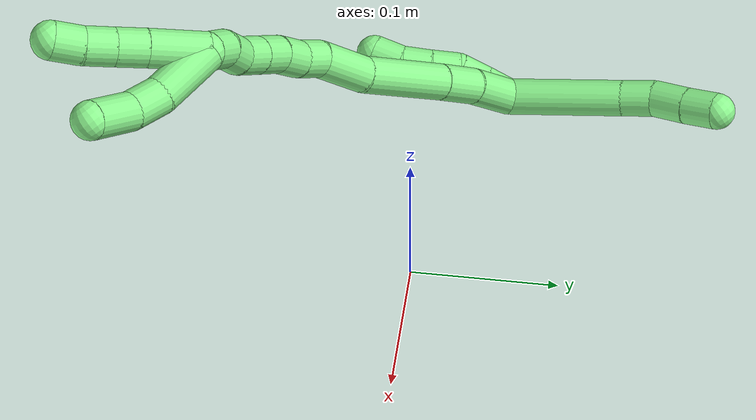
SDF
<sdf version="1.7">
 <world name="default">
  <model name="13">
   <static>0</static>
   <link name="13">
    <collision name="collision-cylinder-e_1_2_8">
     <pose>0.00856 0.03275 -0.020992 -2.1408 0.216601 -0.392548</pose>
     <geometry><cylinder><radius>0.0125</radius><length>0.079661</length></cylinder></geometry>
     <surface>
      <friction><ode><mu>1.16</mu><mu2>1.16</mu2><slip1>0</slip1><slip2>0</slip2></ode></friction>
      <contact><ode><kp>1e+06</kp><kd>1</kd><max_vel>0</max_vel><min_depth>0.001</min_depth></ode></contact>
     </surface>
    </collision>
    <visual name="visual-cylinder-e_1_2_8">
     <pose>0.00856 0.03275 -0.020992 -2.1408 0.216601 -0.392548</pose>
     <geometry><cylinder><radius>0.0125</radius><length>0.079661</length></cylinder></geometry>
     <material><ambient>0.564706 0.984314 0.572549 1</ambient></material>
    </visual>
    <collision name="collision-cylinder-e_2_8_9">
     <pose>0.02038 0.074797 -0.047663 -2.1192 0.290719 -0.510571</pose>
     <geometry><cylinder><radius>0.0125</radius><length>0.022745</length></cylinder></geometry>
     <surface>
      <friction><ode><mu>1.16</mu><mu2>1.16</mu2><slip1>0</slip1><slip2>0</slip2></ode></friction>
      <contact><ode><kp>1e+06</kp><kd>1</kd><max_vel>0</max_vel><min_depth>0.001</min_depth></ode></contact>
     </surface>
    </collision>
    <visual name="visual-cylinder-e_2_8_9">
     <pose>0.02038 0.074797 -0.047663 -2.1192 0.290719 -0.510571</pose>
     <geometry><cylinder><radius>0.0125</radius><length>0.022745</length></cylinder></geometry>
     <material><ambient>0.564706 0.984314 0.572549 1</ambient></material>
    </visual>
    <collision name="collision-cylinder-e_3_9_10">
     <pose>0.030558 0.092031 -0.060196 -2.28301 0.583258 -1.16084</pose>
     <geometry><cylinder><radius>0.0125</radius><length>0.025124</length></cylinder></geometry>
     <surface>
      <friction><ode><mu>1.16</mu><mu2>1.16</mu2><slip1>0</slip1><slip2>0</slip2></ode></friction>
      <contact><ode><kp>1e+06</kp><kd>1</kd><max_vel>0</max_vel><min_depth>0.001</min_depth></ode></contact>
     </surface>
    </collision>
    <visual name="visual-cylinder-e_3_9_10">
     <pose>0.030558 0.092031 -0.060196 -2.28301 0.583258 -1.16084</pose>
     <geometry><cylinder><radius>0.0125</radius><length>0.025124</length></cylinder></geometry>
     <material><ambient>0.564706 0.984314 0.572549 1</ambient></material>
    </visual>
    <collision name="collision-cylinder-e_4_10_6">
     <pose>0.043481 0.107449 -0.072897 -2.23442 0.563787 -1.07211</pose>
     <geometry><cylinder><radius>0.0125</radius><length>0.022469</length></cylinder></geometry>
     <surface>
      <friction><ode><mu>1.16</mu><mu2>1.16</mu2><slip1>0</slip1><slip2>0</slip2></ode></friction>
      <contact><ode><kp>1e+06</kp><kd>1</kd><max_vel>0</max_vel><min_depth>0.001</min_depth></ode></contact>
     </surface>
    </collision>
    <visual name="visual-cylinder-e_4_10_6">
     <pose>0.043481 0.107449 -0.072897 -2.23442 0.563787 -1.07211</pose>
     <geometry><cylinder><radius>0.0125</radius><length>0.022469</length></cylinder></geometry>
     <material><ambient>0.564706 0.984314 0.572549 1</ambient></material>
    </visual>
    <collision name="collision-cylinder-e_1_2_11">
     <pose>-0.00113 -0.004737 0.008734 0.497013 -0.113263 -0.02877</pose>
     <geometry><cylinder><radius>0.0125</radius><length>0.02</length></cylinder></geometry>
     <surface>
      <friction><ode><mu>1.16</mu><mu2>1.16</mu2><slip1>0</slip1><slip2>0</slip2></ode></friction>
      <contact><ode><kp>1e+06</kp><kd>1</kd><max_vel>0</max_vel><min_depth>0.001</min_depth></ode></contact>
     </surface>
    </collision>
    <visual name="visual-cylinder-e_1_2_11">
     <pose>-0.00113 -0.004737 0.008734 0.497013 -0.113263 -0.02877</pose>
     <geometry><cylinder><radius>0.0125</radius><length>0.02</length></cylinder></geometry>
     <material><ambient>0.564706 0.984314 0.572549 1</ambient></material>
    </visual>
    <collision name="collision-cylinder-e_2_11_12">
     <pose>-0.001489 -0.014203 0.026246 0.494047 0.077237 0.019486</pose>
     <geometry><cylinder><radius>0.0125</radius><length>0.02</length></cylinder></geometry>
     <surface>
      <friction><ode><mu>1.16</mu><mu2>1.16</mu2><slip1>0</slip1><slip2>0</slip2></ode></friction>
      <contact><ode><kp>1e+06</kp><kd>1</kd><max_vel>0</max_vel><min_depth>0.001</min_depth></ode></contact>
     </surface>
    </collision>
    <visual name="visual-cylinder-e_2_11_12">
     <pose>-0.001489 -0.014203 0.026246 0.494047 0.077237 0.019486</pose>
     <geometry><cylinder><radius>0.0125</radius><length>0.02</length></cylinder></geometry>
     <material><ambient>0.564706 0.984314 0.572549 1</ambient></material>
    </visual>
    <collision name="collision-cylinder-e_3_12_13">
     <pose>0.00039 -0.026342 0.041645 0.841609 0.110999 0.049717</pose>
     <geometry><cylinder><radius>0.0125</radius><length>0.02</length></cylinder></geometry>
     <surface>
      <friction><ode><mu>1.16</mu><mu2>1.16</mu2><slip1>0</slip1><slip2>0</slip2></ode></friction>
      <contact><ode><kp>1e+06</kp><kd>1</kd><max_vel>0</max_vel><min_depth>0.001</min_depth></ode></contact>
     </surface>
    </collision>
    <visual name="visual-cylinder-e_3_12_13">
     <pose>0.00039 -0.026342 0.041645 0.841609 0.110999 0.049717</pose>
     <geometry><cylinder><radius>0.0125</radius><length>0.02</length></cylinder></geometry>
     <material><ambient>0.564706 0.984314 0.572549 1</ambient></material>
    </visual>
    <collision name="collision-cylinder-e_4_13_14">
     <pose>0.001628 -0.041131 0.055016 0.82991 0.012989 0.005722</pose>
     <geometry><cylinder><radius>0.0125</radius><length>0.02</length></cylinder></geometry>
     <surface>
      <friction><ode><mu>1.16</mu><mu2>1.16</mu2><slip1>0</slip1><slip2>0</slip2></ode></friction>
      <contact><ode><kp>1e+06</kp><kd>1</kd><max_vel>0</max_vel><min_depth>0.001</min_depth></ode></contact>
     </surface>
    </collision>
    <visual name="visual-cylinder-e_4_13_14">
     <pose>0.001628 -0.041131 0.055016 0.82991 0.012989 0.005722</pose>
     <geometry><cylinder><radius>0.0125</radius><length>0.02</length></cylinder></geometry>
     <material><ambient>0.564706 0.984314 0.572549 1</ambient></material>
    </visual>
    <collision name="collision-cylinder-e_5_14_5">
     <pose>-0.000637 -0.05424 0.069602 0.631385 -0.241854 -0.079339</pose>
     <geometry><cylinder><radius>0.0125</radius><length>0.02</length></cylinder></geometry>
     <surface>
      <friction><ode><mu>1.16</mu><mu2>1.16</mu2><slip1>0</slip1><slip2>0</slip2></ode></friction>
      <contact><ode><kp>1e+06</kp><kd>1</kd><max_vel>0</max_vel><min_depth>0.001</min_depth></ode></contact>
     </surface>
    </collision>
    <visual name="visual-cylinder-e_5_14_5">
     <pose>-0.000637 -0.05424 0.069602 0.631385 -0.241854 -0.079339</pose>
     <geometry><cylinder><radius>0.0125</radius><length>0.02</length></cylinder></geometry>
     <material><ambient>0.564706 0.984314 0.572549 1</ambient></material>
    </visual>
    <collision name="collision-cylinder-e_1_2_15">
     <pose>0.013191 -0.00744 0.012807 0.526279 0.727602 0.204422</pose>
     <geometry><cylinder><radius>0.0125</radius><length>0.039666</length></cylinder></geometry>
     <surface>
      <friction><ode><mu>1.16</mu><mu2>1.16</mu2><slip1>0</slip1><slip2>0</slip2></ode></friction>
      <contact><ode><kp>1e+06</kp><kd>1</kd><max_vel>0</max_vel><min_depth>0.001</min_depth></ode></contact>
     </surface>
    </collision>
    <visual name="visual-cylinder-e_1_2_15">
     <pose>0.013191 -0.00744 0.012807 0.526279 0.727602 0.204422</pose>
     <geometry><cylinder><radius>0.0125</radius><length>0.039666</length></cylinder></geometry>
     <material><ambient>0.564706 0.984314 0.572549 1</ambient></material>
    </visual>
    <collision name="collision-cylinder-e_2_15_16">
     <pose>0.035934 -0.022486 0.034859 0.68843 0.673478 0.249687</pose>
     <geometry><cylinder><radius>0.0125</radius><length>0.030632</length></cylinder></geometry>
     <surface>
      <friction><ode><mu>1.16</mu><mu2>1.16</mu2><slip1>0</slip1><slip2>0</slip2></ode></friction>
      <contact><ode><kp>1e+06</kp><kd>1</kd><max_vel>0</max_vel><min_depth>0.001</min_depth></ode></contact>
     </surface>
    </collision>
    <visual name="visual-cylinder-e_2_15_16">
     <pose>0.035934 -0.022486 0.034859 0.68843 0.673478 0.249687</pose>
     <geometry><cylinder><radius>0.0125</radius><length>0.030632</length></cylinder></geometry>
     <material><ambient>0.564706 0.984314 0.572549 1</ambient></material>
    </visual>
    <collision name="collision-cylinder-e_3_16_17">
     <pose>0.065489 -0.048162 0.064297 0.729961 0.635868 0.250183</pose>
     <geometry><cylinder><radius>0.0125</radius><length>0.067361</length></cylinder></geometry>
     <surface>
      <friction><ode><mu>1.16</mu><mu2>1.16</mu2><slip1>0</slip1><slip2>0</slip2></ode></friction>
      <contact><ode><kp>1e+06</kp><kd>1</kd><max_vel>0</max_vel><min_depth>0.001</min_depth></ode></contact>
     </surface>
    </collision>
    <visual name="visual-cylinder-e_3_16_17">
     <pose>0.065489 -0.048162 0.064297 0.729961 0.635868 0.250183</pose>
     <geometry><cylinder><radius>0.0125</radius><length>0.067361</length></cylinder></geometry>
     <material><ambient>0.564706 0.984314 0.572549 1</ambient></material>
    </visual>
    <collision name="collision-cylinder-e_4_17_18">
     <pose>0.096028 -0.074129 0.098711 0.506956 0.574813 0.152847</pose>
     <geometry><cylinder><radius>0.0125</radius><length>0.03876</length></cylinder></geometry>
     <surface>
      <friction><ode><mu>1.16</mu><mu2>1.16</mu2><slip1>0</slip1><slip2>0</slip2></ode></friction>
      <contact><ode><kp>1e+06</kp><kd>1</kd><max_vel>0</max_vel><min_depth>0.001</min_depth></ode></contact>
     </surface>
    </collision>
    <visual name="visual-cylinder-e_4_17_18">
     <pose>0.096028 -0.074129 0.098711 0.506956 0.574813 0.152847</pose>
     <geometry><cylinder><radius>0.0125</radius><length>0.03876</length></cylinder></geometry>
     <material><ambient>0.564706 0.984314 0.572549 1</ambient></material>
    </visual>
    <collision name="collision-cylinder-e_5_18_19">
     <pose>0.113694 -0.08704 0.117913 0.788576 0.78972 0.343383</pose>
     <geometry><cylinder><radius>0.0125</radius><length>0.020079</length></cylinder></geometry>
     <surface>
      <friction><ode><mu>1.16</mu><mu2>1.16</mu2><slip1>0</slip1><slip2>0</slip2></ode></friction>
      <contact><ode><kp>1e+06</kp><kd>1</kd><max_vel>0</max_vel><min_depth>0.001</min_depth></ode></contact>
     </surface>
    </collision>
    <visual name="visual-cylinder-e_5_18_19">
     <pose>0.113694 -0.08704 0.117913 0.788576 0.78972 0.343383</pose>
     <geometry><cylinder><radius>0.0125</radius><length>0.020079</length></cylinder></geometry>
     <material><ambient>0.564706 0.984314 0.572549 1</ambient></material>
    </visual>
    <collision name="collision-cylinder-e_6_19_20">
     <pose>0.128788 -0.095741 0.129158 0.532003 0.831118 0.239299</pose>
     <geometry><cylinder><radius>0.0125</radius><length>0.021566</length></cylinder></geometry>
     <surface>
      <friction><ode><mu>1.16</mu><mu2>1.16</mu2><slip1>0</slip1><slip2>0</slip2></ode></friction>
      <contact><ode><kp>1e+06</kp><kd>1</kd><max_vel>0</max_vel><min_depth>0.001</min_depth></ode></contact>
     </surface>
    </collision>
    <visual name="visual-cylinder-e_6_19_20">
     <pose>0.128788 -0.095741 0.129158 0.532003 0.831118 0.239299</pose>
     <geometry><cylinder><radius>0.0125</radius><length>0.021566</length></cylinder></geometry>
     <material><ambient>0.564706 0.984314 0.572549 1</ambient></material>
    </visual>
    <collision name="collision-cylinder-e_7_20_21">
     <pose>0.145501 -0.103914 0.140115 0.762905 0.932352 0.398287</pose>
     <geometry><cylinder><radius>0.0125</radius><length>0.021787</length></cylinder></geometry>
     <surface>
      <friction><ode><mu>1.16</mu><mu2>1.16</mu2><slip1>0</slip1><slip2>0</slip2></ode></friction>
      <contact><ode><kp>1e+06</kp><kd>1</kd><max_vel>0</max_vel><min_depth>0.001</min_depth></ode></contact>
     </surface>
    </collision>
    <visual name="visual-cylinder-e_7_20_21">
     <pose>0.145501 -0.103914 0.140115 0.762905 0.932352 0.398287</pose>
     <geometry><cylinder><radius>0.0125</radius><length>0.021787</length></cylinder></geometry>
     <material><ambient>0.564706 0.984314 0.572549 1</ambient></material>
    </visual>
    <collision name="collision-cylinder-e_8_21_22">
     <pose>0.162271 -0.112552 0.149208 0.756322 0.924543 0.390863</pose>
     <geometry><cylinder><radius>0.0125</radius><length>0.020096</length></cylinder></geometry>
     <surface>
      <friction><ode><mu>1.16</mu><mu2>1.16</mu2><slip1>0</slip1><slip2>0</slip2></ode></friction>
      <contact><ode><kp>1e+06</kp><kd>1</kd><max_vel>0</max_vel><min_depth>0.001</min_depth></ode></contact>
     </surface>
    </collision>
    <visual name="visual-cylinder-e_8_21_22">
     <pose>0.162271 -0.112552 0.149208 0.756322 0.924543 0.390863</pose>
     <geometry><cylinder><radius>0.0125</radius><length>0.020096</length></cylinder></geometry>
     <material><ambient>0.564706 0.984314 0.572549 1</ambient></material>
    </visual>
    <collision name="collision-cylinder-e_9_22_23">
     <pose>0.178585 -0.117931 0.15909 0.220129 0.975478 0.117116</pose>
     <geometry><cylinder><radius>0.0125</radius><length>0.02003</length></cylinder></geometry>
     <surface>
      <friction><ode><mu>1.16</mu><mu2>1.16</mu2><slip1>0</slip1><slip2>0</slip2></ode></friction>
      <contact><ode><kp>1e+06</kp><kd>1</kd><max_vel>0</max_vel><min_depth>0.001</min_depth></ode></contact>
     </surface>
    </collision>
    <visual name="visual-cylinder-e_9_22_23">
     <pose>0.178585 -0.117931 0.15909 0.220129 0.975478 0.117116</pose>
     <geometry><cylinder><radius>0.0125</radius><length>0.02003</length></cylinder></geometry>
     <material><ambient>0.564706 0.984314 0.572549 1</ambient></material>
    </visual>
    <collision name="collision-cylinder-e_10_23_1">
     <pose>0.195733 -0.122489 0.167842 0.794599 1.08556 0.49582</pose>
     <geometry><cylinder><radius>0.0125</radius><length>0.020022</length></cylinder></geometry>
     <surface>
      <friction><ode><mu>1.16</mu><mu2>1.16</mu2><slip1>0</slip1><slip2>0</slip2></ode></friction>
      <contact><ode><kp>1e+06</kp><kd>1</kd><max_vel>0</max_vel><min_depth>0.001</min_depth></ode></contact>
     </surface>
    </collision>
    <visual name="visual-cylinder-e_10_23_1">
     <pose>0.195733 -0.122489 0.167842 0.794599 1.08556 0.49582</pose>
     <geometry><cylinder><radius>0.0125</radius><length>0.020022</length></cylinder></geometry>
     <material><ambient>0.564706 0.984314 0.572549 1</ambient></material>
    </visual>
    <collision name="collision-cylinder-e_1_1_24">
     <pose>0.215591 -0.144168 0.169535 1.65662 0.538578 0.584306</pose>
     <geometry><cylinder><radius>0.0125</radius><length>0.042903</length></cylinder></geometry>
     <surface>
      <friction><ode><mu>1.16</mu><mu2>1.16</mu2><slip1>0</slip1><slip2>0</slip2></ode></friction>
      <contact><ode><kp>1e+06</kp><kd>1</kd><max_vel>0</max_vel><min_depth>0.001</min_depth></ode></contact>
     </surface>
    </collision>
    <visual name="visual-cylinder-e_1_1_24">
     <pose>0.215591 -0.144168 0.169535 1.65662 0.538578 0.584306</pose>
     <geometry><cylinder><radius>0.0125</radius><length>0.042903</length></cylinder></geometry>
     <material><ambient>0.564706 0.984314 0.572549 1</ambient></material>
    </visual>
    <collision name="collision-cylinder-e_2_24_25">
     <pose>0.233727 -0.171777 0.169942 1.35958 0.645471 0.528025</pose>
     <geometry><cylinder><radius>0.0125</radius><length>0.023716</length></cylinder></geometry>
     <surface>
      <friction><ode><mu>1.16</mu><mu2>1.16</mu2><slip1>0</slip1><slip2>0</slip2></ode></friction>
      <contact><ode><kp>1e+06</kp><kd>1</kd><max_vel>0</max_vel><min_depth>0.001</min_depth></ode></contact>
     </surface>
    </collision>
    <visual name="visual-cylinder-e_2_24_25">
     <pose>0.233727 -0.171777 0.169942 1.35958 0.645471 0.528025</pose>
     <geometry><cylinder><radius>0.0125</radius><length>0.023716</length></cylinder></geometry>
     <material><ambient>0.564706 0.984314 0.572549 1</ambient></material>
    </visual>
    <collision name="collision-cylinder-e_3_25_4">
     <pose>0.253341 -0.190258 0.178078 0.982516 0.844663 0.471877</pose>
     <geometry><cylinder><radius>0.0125</radius><length>0.033381</length></cylinder></geometry>
     <surface>
      <friction><ode><mu>1.16</mu><mu2>1.16</mu2><slip1>0</slip1><slip2>0</slip2></ode></friction>
      <contact><ode><kp>1e+06</kp><kd>1</kd><max_vel>0</max_vel><min_depth>0.001</min_depth></ode></contact>
     </surface>
    </collision>
    <visual name="visual-cylinder-e_3_25_4">
     <pose>0.253341 -0.190258 0.178078 0.982516 0.844663 0.471877</pose>
     <geometry><cylinder><radius>0.0125</radius><length>0.033381</length></cylinder></geometry>
     <material><ambient>0.564706 0.984314 0.572549 1</ambient></material>
    </visual>
    <collision name="collision-cylinder-e_1_1_26">
     <pose>0.210748 -0.13994 0.183419 0.853931 0.317775 0.145544</pose>
     <geometry><cylinder><radius>0.0125</radius><length>0.039432</length></cylinder></geometry>
     <surface>
      <friction><ode><mu>1.16</mu><mu2>1.16</mu2><slip1>0</slip1><slip2>0</slip2></ode></friction>
      <contact><ode><kp>1e+06</kp><kd>1</kd><max_vel>0</max_vel><min_depth>0.001</min_depth></ode></contact>
     </surface>
    </collision>
    <visual name="visual-cylinder-e_1_1_26">
     <pose>0.210748 -0.13994 0.183419 0.853931 0.317775 0.145544</pose>
     <geometry><cylinder><radius>0.0125</radius><length>0.039432</length></cylinder></geometry>
     <material><ambient>0.564706 0.984314 0.572549 1</ambient></material>
    </visual>
    <collision name="collision-cylinder-e_2_26_27">
     <pose>0.220123 -0.161522 0.201948 0.875639 0.319447 0.150539</pose>
     <geometry><cylinder><radius>0.0125</radius><length>0.020469</length></cylinder></geometry>
     <surface>
      <friction><ode><mu>1.16</mu><mu2>1.16</mu2><slip1>0</slip1><slip2>0</slip2></ode></friction>
      <contact><ode><kp>1e+06</kp><kd>1</kd><max_vel>0</max_vel><min_depth>0.001</min_depth></ode></contact>
     </surface>
    </collision>
    <visual name="visual-cylinder-e_2_26_27">
     <pose>0.220123 -0.161522 0.201948 0.875639 0.319447 0.150539</pose>
     <geometry><cylinder><radius>0.0125</radius><length>0.020469</length></cylinder></geometry>
     <material><ambient>0.564706 0.984314 0.572549 1</ambient></material>
    </visual>
    <collision name="collision-cylinder-e_3_27_28">
     <pose>0.226594 -0.176199 0.214301 0.866542 0.331397 0.154411</pose>
     <geometry><cylinder><radius>0.0125</radius><length>0.020025</length></cylinder></geometry>
     <surface>
      <friction><ode><mu>1.16</mu><mu2>1.16</mu2><slip1>0</slip1><slip2>0</slip2></ode></friction>
      <contact><ode><kp>1e+06</kp><kd>1</kd><max_vel>0</max_vel><min_depth>0.001</min_depth></ode></contact>
     </surface>
    </collision>
    <visual name="visual-cylinder-e_3_27_28">
     <pose>0.226594 -0.176199 0.214301 0.866542 0.331397 0.154411</pose>
     <geometry><cylinder><radius>0.0125</radius><length>0.020025</length></cylinder></geometry>
     <material><ambient>0.564706 0.984314 0.572549 1</ambient></material>
    </visual>
    <collision name="collision-cylinder-e_4_28_3">
     <pose>0.232796 -0.189862 0.227537 0.736947 0.297658 0.115655</pose>
     <geometry><cylinder><radius>0.0125</radius><length>0.020075</length></cylinder></geometry>
     <surface>
      <friction><ode><mu>1.16</mu><mu2>1.16</mu2><slip1>0</slip1><slip2>0</slip2></ode></friction>
      <contact><ode><kp>1e+06</kp><kd>1</kd><max_vel>0</max_vel><min_depth>0.001</min_depth></ode></contact>
     </surface>
    </collision>
    <visual name="visual-cylinder-e_4_28_3">
     <pose>0.232796 -0.189862 0.227537 0.736947 0.297658 0.115655</pose>
     <geometry><cylinder><radius>0.0125</radius><length>0.020075</length></cylinder></geometry>
     <material><ambient>0.564706 0.984314 0.572549 1</ambient></material>
    </visual>
    <collision name="collision-sphere-3">
     <pose>0.235739 -0.196311 0.234643 0 -0 0</pose>
     <geometry><sphere><radius>0.0125</radius></sphere></geometry>
     <surface>
      <friction><ode><mu>1.16</mu><mu2>1.16</mu2><slip1>0</slip1><slip2>0</slip2></ode></friction>
      <contact><ode><kp>1e+06</kp><kd>1</kd><max_vel>0</max_vel><min_depth>0.001</min_depth></ode></contact>
     </surface>
    </collision>
    <visual name="visual-sphere-3">
     <pose>0.235739 -0.196311 0.234643 0 -0 0</pose>
     <geometry><sphere><radius>0.0125</radius></sphere></geometry>
     <material><ambient>0.564706 0.984314 0.572549 1</ambient></material>
    </visual>
    <collision name="collision-sphere-28">
     <pose>0.229852 -0.183414 0.220431 0 -0 0</pose>
     <geometry><sphere><radius>0.0125</radius></sphere></geometry>
     <surface>
      <friction><ode><mu>1.16</mu><mu2>1.16</mu2><slip1>0</slip1><slip2>0</slip2></ode></friction>
      <contact><ode><kp>1e+06</kp><kd>1</kd><max_vel>0</max_vel><min_depth>0.001</min_depth></ode></contact>
     </surface>
    </collision>
    <visual name="visual-sphere-28">
     <pose>0.229852 -0.183414 0.220431 0 -0 0</pose>
     <geometry><sphere><radius>0.0125</radius></sphere></geometry>
     <material><ambient>0.564706 0.984314 0.572549 1</ambient></material>
    </visual>
    <collision name="collision-sphere-27">
     <pose>0.223337 -0.168984 0.208171 0 -0 0</pose>
     <geometry><sphere><radius>0.0125</radius></sphere></geometry>
     <surface>
      <friction><ode><mu>1.16</mu><mu2>1.16</mu2><slip1>0</slip1><slip2>0</slip2></ode></friction>
      <contact><ode><kp>1e+06</kp><kd>1</kd><max_vel>0</max_vel><min_depth>0.001</min_depth></ode></contact>
     </surface>
    </collision>
    <visual name="visual-sphere-27">
     <pose>0.223337 -0.168984 0.208171 0 -0 0</pose>
     <geometry><sphere><radius>0.0125</radius></sphere></geometry>
     <material><ambient>0.564706 0.984314 0.572549 1</ambient></material>
    </visual>
    <collision name="collision-sphere-26">
     <pose>0.216909 -0.15406 0.195724 0 -0 0</pose>
     <geometry><sphere><radius>0.0125</radius></sphere></geometry>
     <surface>
      <friction><ode><mu>1.16</mu><mu2>1.16</mu2><slip1>0</slip1><slip2>0</slip2></ode></friction>
      <contact><ode><kp>1e+06</kp><kd>1</kd><max_vel>0</max_vel><min_depth>0.001</min_depth></ode></contact>
     </surface>
    </collision>
    <visual name="visual-sphere-26">
     <pose>0.216909 -0.15406 0.195724 0 -0 0</pose>
     <geometry><sphere><radius>0.0125</radius></sphere></geometry>
     <material><ambient>0.564706 0.984314 0.572549 1</ambient></material>
    </visual>
    <collision name="collision-sphere-4">
     <pose>0.265821 -0.199478 0.184228 0 -0 0</pose>
     <geometry><sphere><radius>0.0125</radius></sphere></geometry>
     <surface>
      <friction><ode><mu>1.16</mu><mu2>1.16</mu2><slip1>0</slip1><slip2>0</slip2></ode></friction>
      <contact><ode><kp>1e+06</kp><kd>1</kd><max_vel>0</max_vel><min_depth>0.001</min_depth></ode></contact>
     </surface>
    </collision>
    <visual name="visual-sphere-4">
     <pose>0.265821 -0.199478 0.184228 0 -0 0</pose>
     <geometry><sphere><radius>0.0125</radius></sphere></geometry>
     <material><ambient>0.564706 0.984314 0.572549 1</ambient></material>
    </visual>
    <collision name="collision-sphere-25">
     <pose>0.24086 -0.181039 0.171928 0 -0 0</pose>
     <geometry><sphere><radius>0.0125</radius></sphere></geometry>
     <surface>
      <friction><ode><mu>1.16</mu><mu2>1.16</mu2><slip1>0</slip1><slip2>0</slip2></ode></friction>
      <contact><ode><kp>1e+06</kp><kd>1</kd><max_vel>0</max_vel><min_depth>0.001</min_depth></ode></contact>
     </surface>
    </collision>
    <visual name="visual-sphere-25">
     <pose>0.24086 -0.181039 0.171928 0 -0 0</pose>
     <geometry><sphere><radius>0.0125</radius></sphere></geometry>
     <material><ambient>0.564706 0.984314 0.572549 1</ambient></material>
    </visual>
    <collision name="collision-sphere-24">
     <pose>0.226593 -0.162515 0.167956 0 -0 0</pose>
     <geometry><sphere><radius>0.0125</radius></sphere></geometry>
     <surface>
      <friction><ode><mu>1.16</mu><mu2>1.16</mu2><slip1>0</slip1><slip2>0</slip2></ode></friction>
      <contact><ode><kp>1e+06</kp><kd>1</kd><max_vel>0</max_vel><min_depth>0.001</min_depth></ode></contact>
     </surface>
    </collision>
    <visual name="visual-sphere-24">
     <pose>0.226593 -0.162515 0.167956 0 -0 0</pose>
     <geometry><sphere><radius>0.0125</radius></sphere></geometry>
     <material><ambient>0.564706 0.984314 0.572549 1</ambient></material>
    </visual>
    <collision name="collision-sphere-1">
     <pose>0.204588 -0.125821 0.171113 0 -0 0</pose>
     <geometry><sphere><radius>0.0125</radius></sphere></geometry>
     <surface>
      <friction><ode><mu>1.16</mu><mu2>1.16</mu2><slip1>0</slip1><slip2>0</slip2></ode></friction>
      <contact><ode><kp>1e+06</kp><kd>1</kd><max_vel>0</max_vel><min_depth>0.001</min_depth></ode></contact>
     </surface>
    </collision>
    <visual name="visual-sphere-1">
     <pose>0.204588 -0.125821 0.171113 0 -0 0</pose>
     <geometry><sphere><radius>0.0125</radius></sphere></geometry>
     <material><ambient>0.564706 0.984314 0.572549 1</ambient></material>
    </visual>
    <collision name="collision-sphere-23">
     <pose>0.186877 -0.119158 0.164571 0 -0 0</pose>
     <geometry><sphere><radius>0.0125</radius></sphere></geometry>
     <surface>
      <friction><ode><mu>1.16</mu><mu2>1.16</mu2><slip1>0</slip1><slip2>0</slip2></ode></friction>
      <contact><ode><kp>1e+06</kp><kd>1</kd><max_vel>0</max_vel><min_depth>0.001</min_depth></ode></contact>
     </surface>
    </collision>
    <visual name="visual-sphere-23">
     <pose>0.186877 -0.119158 0.164571 0 -0 0</pose>
     <geometry><sphere><radius>0.0125</radius></sphere></geometry>
     <material><ambient>0.564706 0.984314 0.572549 1</ambient></material>
    </visual>
    <collision name="collision-sphere-22">
     <pose>0.170293 -0.116705 0.15361 0 -0 0</pose>
     <geometry><sphere><radius>0.0125</radius></sphere></geometry>
     <surface>
      <friction><ode><mu>1.16</mu><mu2>1.16</mu2><slip1>0</slip1><slip2>0</slip2></ode></friction>
      <contact><ode><kp>1e+06</kp><kd>1</kd><max_vel>0</max_vel><min_depth>0.001</min_depth></ode></contact>
     </surface>
    </collision>
    <visual name="visual-sphere-22">
     <pose>0.170293 -0.116705 0.15361 0 -0 0</pose>
     <geometry><sphere><radius>0.0125</radius></sphere></geometry>
     <material><ambient>0.564706 0.984314 0.572549 1</ambient></material>
    </visual>
    <collision name="collision-sphere-21">
     <pose>0.154249 -0.1084 0.144807 0 -0 0</pose>
     <geometry><sphere><radius>0.0125</radius></sphere></geometry>
     <surface>
      <friction><ode><mu>1.16</mu><mu2>1.16</mu2><slip1>0</slip1><slip2>0</slip2></ode></friction>
      <contact><ode><kp>1e+06</kp><kd>1</kd><max_vel>0</max_vel><min_depth>0.001</min_depth></ode></contact>
     </surface>
    </collision>
    <visual name="visual-sphere-21">
     <pose>0.154249 -0.1084 0.144807 0 -0 0</pose>
     <geometry><sphere><radius>0.0125</radius></sphere></geometry>
     <material><ambient>0.564706 0.984314 0.572549 1</ambient></material>
    </visual>
    <collision name="collision-sphere-11">
     <pose>-0.00226 -0.009475 0.017468 0 -0 0</pose>
     <geometry><sphere><radius>0.0125</radius></sphere></geometry>
     <surface>
      <friction><ode><mu>1.16</mu><mu2>1.16</mu2><slip1>0</slip1><slip2>0</slip2></ode></friction>
      <contact><ode><kp>1e+06</kp><kd>1</kd><max_vel>0</max_vel><min_depth>0.001</min_depth></ode></contact>
     </surface>
    </collision>
    <visual name="visual-sphere-11">
     <pose>-0.00226 -0.009475 0.017468 0 -0 0</pose>
     <geometry><sphere><radius>0.0125</radius></sphere></geometry>
     <material><ambient>0.564706 0.984314 0.572549 1</ambient></material>
    </visual>
    <collision name="collision-sphere-6">
     <pose>0.049484 0.114929 -0.078746 0 -0 0</pose>
     <geometry><sphere><radius>0.0125</radius></sphere></geometry>
     <surface>
      <friction><ode><mu>1.16</mu><mu2>1.16</mu2><slip1>0</slip1><slip2>0</slip2></ode></friction>
      <contact><ode><kp>1e+06</kp><kd>1</kd><max_vel>0</max_vel><min_depth>0.001</min_depth></ode></contact>
     </surface>
    </collision>
    <visual name="visual-sphere-6">
     <pose>0.049484 0.114929 -0.078746 0 -0 0</pose>
     <geometry><sphere><radius>0.0125</radius></sphere></geometry>
     <material><ambient>0.564706 0.984314 0.572549 1</ambient></material>
    </visual>
    <collision name="collision-sphere-10">
     <pose>0.037477 0.099968 -0.067048 0 -0 0</pose>
     <geometry><sphere><radius>0.0125</radius></sphere></geometry>
     <surface>
      <friction><ode><mu>1.16</mu><mu2>1.16</mu2><slip1>0</slip1><slip2>0</slip2></ode></friction>
      <contact><ode><kp>1e+06</kp><kd>1</kd><max_vel>0</max_vel><min_depth>0.001</min_depth></ode></contact>
     </surface>
    </collision>
    <visual name="visual-sphere-10">
     <pose>0.037477 0.099968 -0.067048 0 -0 0</pose>
     <geometry><sphere><radius>0.0125</radius></sphere></geometry>
     <material><ambient>0.564706 0.984314 0.572549 1</ambient></material>
    </visual>
    <collision name="collision-sphere-9">
     <pose>0.02364 0.084095 -0.053343 0 -0 0</pose>
     <geometry><sphere><radius>0.0125</radius></sphere></geometry>
     <surface>
      <friction><ode><mu>1.16</mu><mu2>1.16</mu2><slip1>0</slip1><slip2>0</slip2></ode></friction>
      <contact><ode><kp>1e+06</kp><kd>1</kd><max_vel>0</max_vel><min_depth>0.001</min_depth></ode></contact>
     </surface>
    </collision>
    <visual name="visual-sphere-9">
     <pose>0.02364 0.084095 -0.053343 0 -0 0</pose>
     <geometry><sphere><radius>0.0125</radius></sphere></geometry>
     <material><ambient>0.564706 0.984314 0.572549 1</ambient></material>
    </visual>
    <collision name="collision-sphere-2">
     <geometry><sphere><radius>0.0125</radius></sphere></geometry>
     <surface>
      <friction><ode><mu>1.16</mu><mu2>1.16</mu2><slip1>0</slip1><slip2>0</slip2></ode></friction>
      <contact><ode><kp>1e+06</kp><kd>1</kd><max_vel>0</max_vel><min_depth>0.001</min_depth></ode></contact>
     </surface>
    </collision>
    <visual name="visual-sphere-2">
     <geometry><sphere><radius>0.0125</radius></sphere></geometry>
     <material><ambient>0.564706 0.984314 0.572549 1</ambient></material>
    </visual>
    <collision name="collision-sphere-19">
     <pose>0.120823 -0.092054 0.122895 0 -0 0</pose>
     <geometry><sphere><radius>0.0125</radius></sphere></geometry>
     <surface>
      <friction><ode><mu>1.16</mu><mu2>1.16</mu2><slip1>0</slip1><slip2>0</slip2></ode></friction>
      <contact><ode><kp>1e+06</kp><kd>1</kd><max_vel>0</max_vel><min_depth>0.001</min_depth></ode></contact>
     </surface>
    </collision>
    <visual name="visual-sphere-19">
     <pose>0.120823 -0.092054 0.122895 0 -0 0</pose>
     <geometry><sphere><radius>0.0125</radius></sphere></geometry>
     <material><ambient>0.564706 0.984314 0.572549 1</ambient></material>
    </visual>
    <collision name="collision-sphere-8">
     <pose>0.01712 0.0655 -0.041983 0 -0 0</pose>
     <geometry><sphere><radius>0.0125</radius></sphere></geometry>
     <surface>
      <friction><ode><mu>1.16</mu><mu2>1.16</mu2><slip1>0</slip1><slip2>0</slip2></ode></friction>
      <contact><ode><kp>1e+06</kp><kd>1</kd><max_vel>0</max_vel><min_depth>0.001</min_depth></ode></contact>
     </surface>
    </collision>
    <visual name="visual-sphere-8">
     <pose>0.01712 0.0655 -0.041983 0 -0 0</pose>
     <geometry><sphere><radius>0.0125</radius></sphere></geometry>
     <material><ambient>0.564706 0.984314 0.572549 1</ambient></material>
    </visual>
    <collision name="collision-sphere-12">
     <pose>-0.000717 -0.018931 0.035023 0 -0 0</pose>
     <geometry><sphere><radius>0.0125</radius></sphere></geometry>
     <surface>
      <friction><ode><mu>1.16</mu><mu2>1.16</mu2><slip1>0</slip1><slip2>0</slip2></ode></friction>
      <contact><ode><kp>1e+06</kp><kd>1</kd><max_vel>0</max_vel><min_depth>0.001</min_depth></ode></contact>
     </surface>
    </collision>
    <visual name="visual-sphere-12">
     <pose>-0.000717 -0.018931 0.035023 0 -0 0</pose>
     <geometry><sphere><radius>0.0125</radius></sphere></geometry>
     <material><ambient>0.564706 0.984314 0.572549 1</ambient></material>
    </visual>
    <collision name="collision-sphere-13">
     <pose>0.001498 -0.033753 0.048267 0 -0 0</pose>
     <geometry><sphere><radius>0.0125</radius></sphere></geometry>
     <surface>
      <friction><ode><mu>1.16</mu><mu2>1.16</mu2><slip1>0</slip1><slip2>0</slip2></ode></friction>
      <contact><ode><kp>1e+06</kp><kd>1</kd><max_vel>0</max_vel><min_depth>0.001</min_depth></ode></contact>
     </surface>
    </collision>
    <visual name="visual-sphere-13">
     <pose>0.001498 -0.033753 0.048267 0 -0 0</pose>
     <geometry><sphere><radius>0.0125</radius></sphere></geometry>
     <material><ambient>0.564706 0.984314 0.572549 1</ambient></material>
    </visual>
    <collision name="collision-sphere-14">
     <pose>0.001758 -0.048509 0.061764 0 -0 0</pose>
     <geometry><sphere><radius>0.0125</radius></sphere></geometry>
     <surface>
      <friction><ode><mu>1.16</mu><mu2>1.16</mu2><slip1>0</slip1><slip2>0</slip2></ode></friction>
      <contact><ode><kp>1e+06</kp><kd>1</kd><max_vel>0</max_vel><min_depth>0.001</min_depth></ode></contact>
     </surface>
    </collision>
    <visual name="visual-sphere-14">
     <pose>0.001758 -0.048509 0.061764 0 -0 0</pose>
     <geometry><sphere><radius>0.0125</radius></sphere></geometry>
     <material><ambient>0.564706 0.984314 0.572549 1</ambient></material>
    </visual>
    <collision name="collision-sphere-5">
     <pose>-0.003032 -0.059971 0.077439 0 -0 0</pose>
     <geometry><sphere><radius>0.0125</radius></sphere></geometry>
     <surface>
      <friction><ode><mu>1.16</mu><mu2>1.16</mu2><slip1>0</slip1><slip2>0</slip2></ode></friction>
      <contact><ode><kp>1e+06</kp><kd>1</kd><max_vel>0</max_vel><min_depth>0.001</min_depth></ode></contact>
     </surface>
    </collision>
    <visual name="visual-sphere-5">
     <pose>-0.003032 -0.059971 0.077439 0 -0 0</pose>
     <geometry><sphere><radius>0.0125</radius></sphere></geometry>
     <material><ambient>0.564706 0.984314 0.572549 1</ambient></material>
    </visual>
    <collision name="collision-sphere-15">
     <pose>0.026381 -0.01488 0.025613 0 -0 0</pose>
     <geometry><sphere><radius>0.0125</radius></sphere></geometry>
     <surface>
      <friction><ode><mu>1.16</mu><mu2>1.16</mu2><slip1>0</slip1><slip2>0</slip2></ode></friction>
      <contact><ode><kp>1e+06</kp><kd>1</kd><max_vel>0</max_vel><min_depth>0.001</min_depth></ode></contact>
     </surface>
    </collision>
    <visual name="visual-sphere-15">
     <pose>0.026381 -0.01488 0.025613 0 -0 0</pose>
     <geometry><sphere><radius>0.0125</radius></sphere></geometry>
     <material><ambient>0.564706 0.984314 0.572549 1</ambient></material>
    </visual>
    <collision name="collision-sphere-16">
     <pose>0.045487 -0.030092 0.044104 0 -0 0</pose>
     <geometry><sphere><radius>0.0125</radius></sphere></geometry>
     <surface>
      <friction><ode><mu>1.16</mu><mu2>1.16</mu2><slip1>0</slip1><slip2>0</slip2></ode></friction>
      <contact><ode><kp>1e+06</kp><kd>1</kd><max_vel>0</max_vel><min_depth>0.001</min_depth></ode></contact>
     </surface>
    </collision>
    <visual name="visual-sphere-16">
     <pose>0.045487 -0.030092 0.044104 0 -0 0</pose>
     <geometry><sphere><radius>0.0125</radius></sphere></geometry>
     <material><ambient>0.564706 0.984314 0.572549 1</ambient></material>
    </visual>
    <collision name="collision-sphere-17">
     <pose>0.085491 -0.066232 0.084491 0 -0 0</pose>
     <geometry><sphere><radius>0.0125</radius></sphere></geometry>
     <surface>
      <friction><ode><mu>1.16</mu><mu2>1.16</mu2><slip1>0</slip1><slip2>0</slip2></ode></friction>
      <contact><ode><kp>1e+06</kp><kd>1</kd><max_vel>0</max_vel><min_depth>0.001</min_depth></ode></contact>
     </surface>
    </collision>
    <visual name="visual-sphere-17">
     <pose>0.085491 -0.066232 0.084491 0 -0 0</pose>
     <geometry><sphere><radius>0.0125</radius></sphere></geometry>
     <material><ambient>0.564706 0.984314 0.572549 1</ambient></material>
    </visual>
    <collision name="collision-sphere-18">
     <pose>0.106564 -0.082026 0.112931 0 -0 0</pose>
     <geometry><sphere><radius>0.0125</radius></sphere></geometry>
     <surface>
      <friction><ode><mu>1.16</mu><mu2>1.16</mu2><slip1>0</slip1><slip2>0</slip2></ode></friction>
      <contact><ode><kp>1e+06</kp><kd>1</kd><max_vel>0</max_vel><min_depth>0.001</min_depth></ode></contact>
     </surface>
    </collision>
    <visual name="visual-sphere-18">
     <pose>0.106564 -0.082026 0.112931 0 -0 0</pose>
     <geometry><sphere><radius>0.0125</radius></sphere></geometry>
     <material><ambient>0.564706 0.984314 0.572549 1</ambient></material>
    </visual>
    <collision name="collision-sphere-20">
     <pose>0.136754 -0.099428 0.135422 0 -0 0</pose>
     <geometry><sphere><radius>0.0125</radius></sphere></geometry>
     <surface>
      <friction><ode><mu>1.16</mu><mu2>1.16</mu2><slip1>0</slip1><slip2>0</slip2></ode></friction>
      <contact><ode><kp>1e+06</kp><kd>1</kd><max_vel>0</max_vel><min_depth>0.001</min_depth></ode></contact>
     </surface>
    </collision>
    <visual name="visual-sphere-20">
     <pose>0.136754 -0.099428 0.135422 0 -0 0</pose>
     <geometry><sphere><radius>0.0125</radius></sphere></geometry>
     <material><ambient>0.564706 0.984314 0.572549 1</ambient></material>
    </visual>
    <inertial>
     <pose>0.102515 -0.062406 0.084101 0 -0 0</pose>
     <mass>0.75</mass>
     <inertia>
      <ixx>0.000135</ixx>
      <ixy>0</ixy>
      <ixz>0</ixz>
      <iyy>2.6e-05</iyy>
      <iyz>0</iyz>
      <izz>-3.2e-05</izz>
     </inertia>
    </inertial>
   </link>
   <pose>-0.136883 0.051733 0.040017 0.579014 -0.565937 0.155623</pose>
  </model>
 </world>
</sdf>
